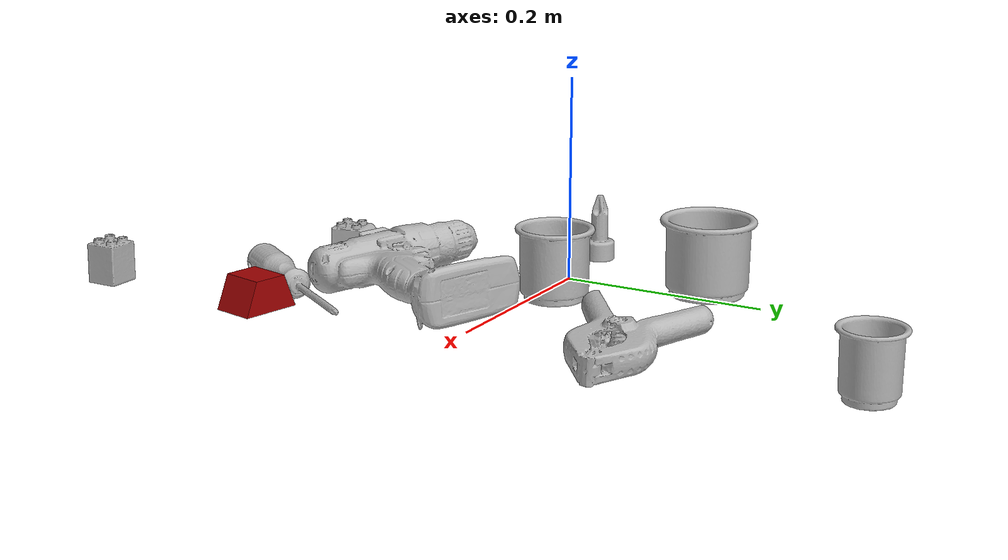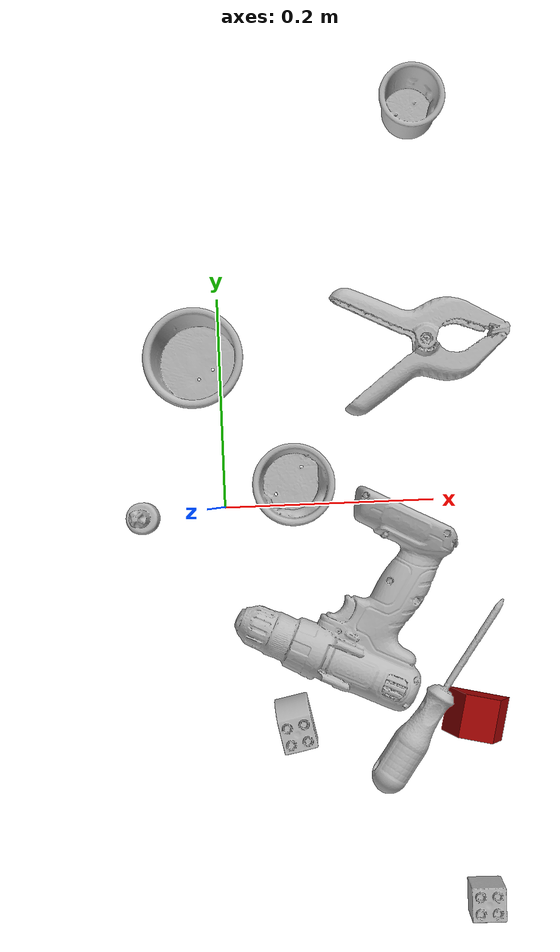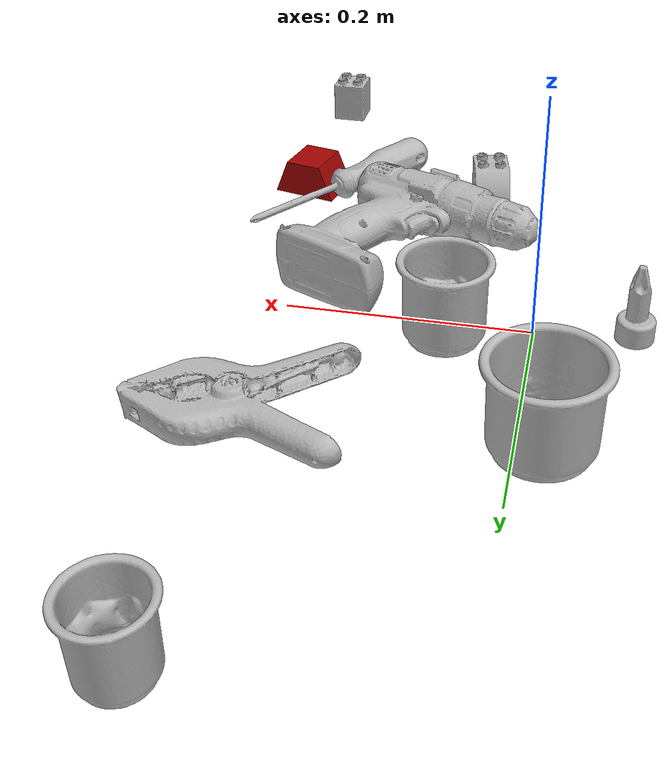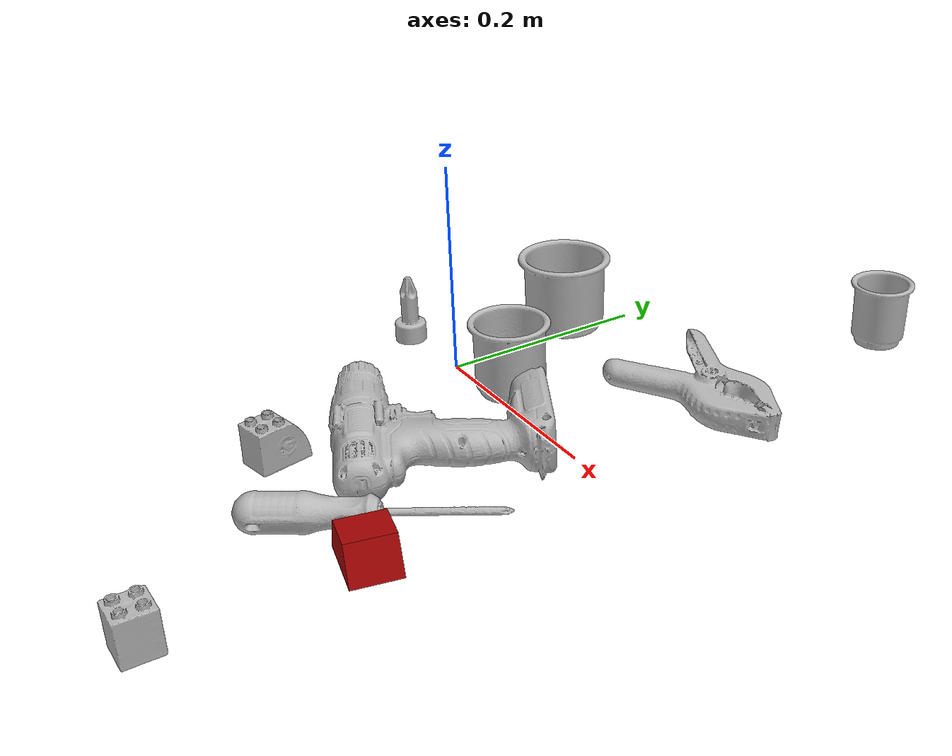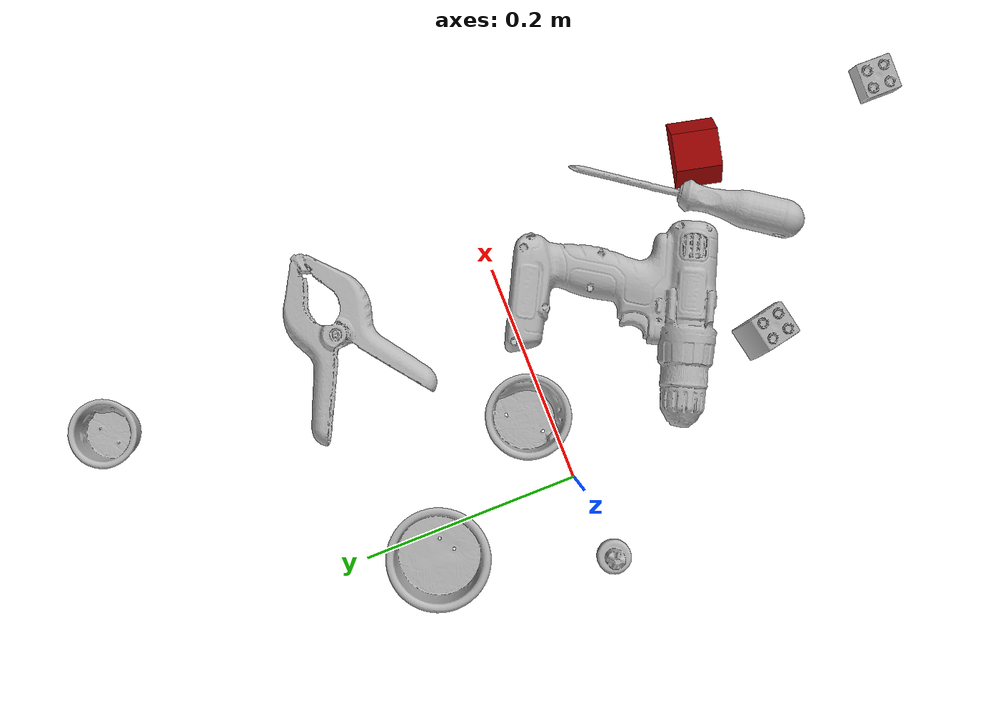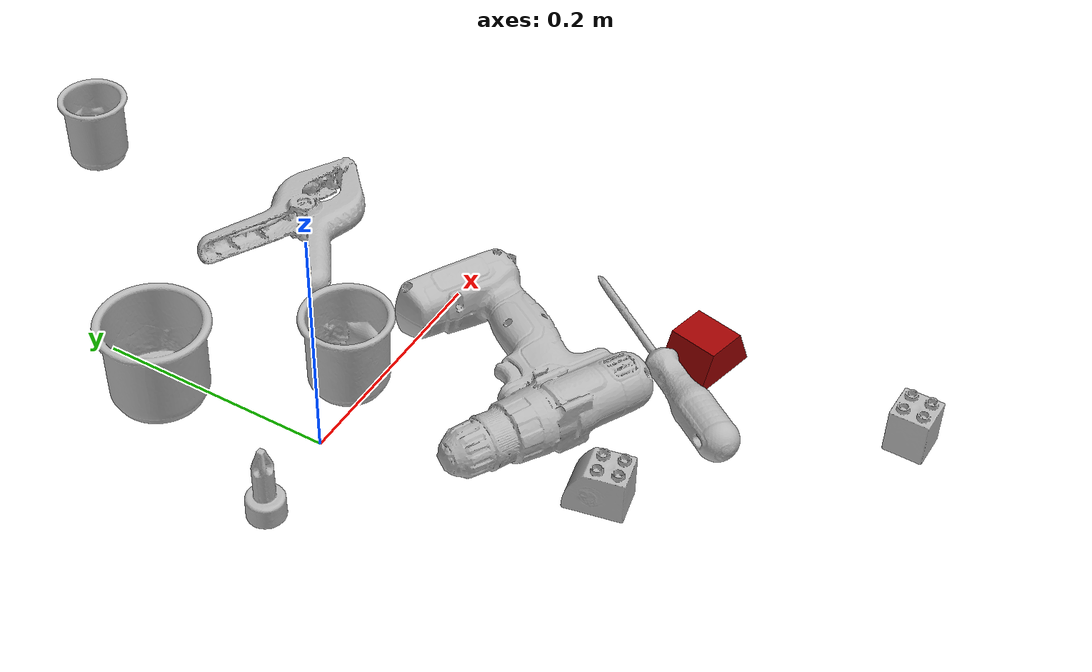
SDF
<sdf version="1.4">
  <world name="default">
    <light name="light1" type="point">
      <pose>0 0 1 0 0 0</pose>
      <diffuse>3 3 3 1</diffuse>
      <specular>3 3 3 1</specular>
    </light>
    <light name="light2" type="point">
      <pose>0 0.5 2 0 0 0</pose>
      <diffuse>1 1 1 1</diffuse>
      <specular>1 1 1 1</specular>
    </light>
    <light name="light3" type="point">
      <pose>0 0.5 2 0 0 0</pose>
      <diffuse>3 3 3 1</diffuse>
      <specular>3 3 3 1</specular>
    </light>
    <scene>
      <ambient>0.7 0.7 0.7</ambient>
    </scene>
    <model name="cup1">
      <link name="link_cup1">
        <collision name="default">
          <geometry>
            <mesh>
              <uri>model://b_cups/collision_meshes/collision.obj</uri>
              <scale>1.0 1.0 1.0</scale>
            </mesh>
          </geometry>
          <surface>
            <friction>
              <ode>
                <mu>0.5</mu>
                <mu2>0.5</mu2>
              </ode>
            </friction>
          <contact>
        <ode>
            <max_vel>0</max_vel>
            <min_depth>0.0001</min_depth>
            <kp>1e8</kp>
        </ode>
    </contact></surface>
        </collision>
        <visual name="default">
          <geometry>
            <mesh>
              <uri>model://b_cups/visual_meshes/visual.dae</uri>
              <scale>1.0 1.0 1.0</scale>
            </mesh>
          </geometry>
        </visual>
        <inertial>
          <mass>0.048613063991069794</mass>
          <pose>0.0005182003951631486 0.0018058597343042493 -0.0013381808530539274 0.11356326710502956 0.03872484102688303 -0.34569225342860055</pose>
          <inertia>
            <ixx>3.1820662e-05</ixx>
            <iyy>3.121653e-05</iyy>
            <izz>2.6776484e-05</izz>
            <ixy>0</ixy>
            <ixz>0</ixz>
            <iyz>0</iyz>
          </inertia>
        </inertial>
      </link>
      <pose>0.1899147778749466 0.3700915277004242 0.031996190547943115 -0.007654056760980145 -0.0037883973524676868 -1.8015946966077998</pose>
    </model>
    <model name="cup2">
      <link name="link_cup2">
        <collision name="default">
          <geometry>
            <mesh>
              <uri>model://e_cups/collision_meshes/collision.obj</uri>
              <scale>1.0 1.0 1.0</scale>
            </mesh>
          </geometry>
          <surface>
            <friction>
              <ode>
                <mu>0.5</mu>
                <mu2>0.5</mu2>
              </ode>
            </friction>
          <contact>
        <ode>
            <max_vel>0</max_vel>
            <min_depth>0.0001</min_depth>
            <kp>1e8</kp>
        </ode>
    </contact></surface>
        </collision>
        <visual name="default">
          <geometry>
            <mesh>
              <uri>model://e_cups/visual_meshes/visual.dae</uri>
              <scale>1.0 1.0 1.0</scale>
            </mesh>
          </geometry>
        </visual>
        <inertial>
          <mass>0.07592208683490753</mass>
          <pose>0.0011355738388374448 0.002879784908145666 -0.003882972290739417 0.695241209711482 0.0876783799590152 -0.5235234031188288</pose>
          <inertia>
            <ixx>6.6944274e-05</ixx>
            <iyy>6.996636e-05</iyy>
            <izz>6.400647e-05</izz>
            <ixy>0</ixy>
            <ixz>0</ixz>
            <iyz>0</iyz>
          </inertia>
        </inertial>
      </link>
      <pose>0.06770861893892288 0.018918760120868683 0.03559989482164383 6.703806233682679e-05 -8.46713983806165e-05 -1.9993671481156967</pose>
    </model>
    <model name="cup3">
      <link name="link_cup3">
        <collision name="default">
          <geometry>
            <mesh>
              <uri>model://h_cups/collision_meshes/collision.obj</uri>
              <scale>1.0 1.0 1.0</scale>
            </mesh>
          </geometry>
          <surface>
            <friction>
              <ode>
                <mu>0.5</mu>
                <mu2>0.5</mu2>
              </ode>
            </friction>
          <contact>
        <ode>
            <max_vel>0</max_vel>
            <min_depth>0.0001</min_depth>
            <kp>1e8</kp>
        </ode>
    </contact></surface>
        </collision>
        <visual name="default">
          <geometry>
            <mesh>
              <uri>model://h_cups/visual_meshes/visual.dae</uri>
              <scale>1.0 1.0 1.0</scale>
            </mesh>
          </geometry>
        </visual>
        <inertial>
          <mass>0.07054857164621353</mass>
          <pose>-2.7030857381760143e-05 0.0002301865170011297 -0.0018405391601845622 -0.024362378998248252 0.0654525662963329 0.12884761756284485</pose>
          <inertia>
            <ixx>9.1110225e-05</ixx>
            <iyy>9.002296e-05</iyy>
            <izz>9.5549614e-05</izz>
            <ixy>0</ixy>
            <ixz>0</ixz>
            <iyz>0</iyz>
          </inertia>
        </inertial>
      </link>
      <pose>-0.01900000497698784 0.13723884522914886 0.03775802627205849 2.7494079472816486e-06 9.694272784189281e-07 2.0544223003004607</pose>
    </model>
    <model name="toy1">
      <link name="link_toy1">
        <collision name="default">
          <geometry>
            <mesh>
              <uri>model://f_lego_duplo/collision_meshes/collision.obj</uri>
              <scale>1.0 1.0 1.0</scale>
            </mesh>
          </geometry>
          <surface>
            <friction>
              <ode>
                <mu>0.5</mu>
                <mu2>0.5</mu2>
              </ode>
            </friction>
          <contact>
        <ode>
            <max_vel>0</max_vel>
            <min_depth>0.0001</min_depth>
            <kp>1e8</kp>
        </ode>
    </contact></surface>
        </collision>
        <visual name="default">
          <geometry>
            <mesh>
              <uri>model://f_lego_duplo/visual_meshes/visual.dae</uri>
              <scale>1.0 1.0 1.0</scale>
            </mesh>
          </geometry>
        </visual>
        <inertial>
          <mass>0.027637142688035965</mass>
          <pose>2.3694037736277096e-05 0.0001339315203949809 0.0018837873358279467 0.029838580482088747 -0.014425059949813135 -0.6756637855802661</pose>
          <inertia>
            <ixx>5.8398805e-06</ixx>
            <iyy>5.8919077e-06</iyy>
            <izz>5.069264e-06</izz>
            <ixy>0</ixy>
            <ixz>0</ixz>
            <iyz>0</iyz>
          </inertia>
        </inertial>
      </link>
      <pose>0.2332611232995987 -0.3803834021091461 0.021870996803045273 1.4256470137710513e-06 1.346127557325209e-06 1.5568960016208795</pose>
    </model>
    <model name="toy2">
      <link name="link_toy2">
        <collision name="default">
          <geometry>
            <mesh>
              <uri>model://d_toy_airplane/collision_meshes/collision.obj</uri>
              <scale>1.0 1.0 1.0</scale>
            </mesh>
          </geometry>
          <surface>
            <friction>
              <ode>
                <mu>0.5</mu>
                <mu2>0.5</mu2>
              </ode>
            </friction>
          <contact>
        <ode>
            <max_vel>0</max_vel>
            <min_depth>0.0001</min_depth>
            <kp>1e8</kp>
        </ode>
    </contact></surface>
        </collision>
        <visual name="default">
          <geometry>
            <mesh>
              <uri>model://d_toy_airplane/visual_meshes/visual.dae</uri>
              <scale>1.0 1.0 1.0</scale>
            </mesh>
          </geometry>
        </visual>
        <inertial>
          <mass>0.017859498038887978</mass>
          <pose>9.410335042048246e-05 -5.809318827232346e-05 -0.011728094890713692 0.0002667298520076861 0.004679004392369758 0.5194091511239993</pose>
          <inertia>
            <ixx>5.35393e-06</ixx>
            <iyy>5.3579683e-06</iyy>
            <izz>1.6163864e-06</izz>
            <ixy>0</ixy>
            <ixz>0</ixz>
            <iyz>0</iyz>
          </inertia>
        </inertial>
      </link>
      <pose>-0.07865479588508606 -0.007083070930093527 0.033342912793159485 0.0003168920063653708 -0.0005360616173210904 1.6663993617211</pose>
    </model>
    <model name="toy3">
      <link name="link_toy3">
        <collision name="default">
          <geometry>
            <mesh>
              <uri>model://prism/collision_meshes/collision.obj</uri>
              <scale>0.5 0.5 0.5</scale>
            </mesh>
          </geometry>
          <surface>
            <friction>
              <ode>
                <mu>0.5</mu>
                <mu2>0.5</mu2>
              </ode>
            </friction>
          <contact>
        <ode>
            <max_vel>0</max_vel>
            <min_depth>0.0001</min_depth>
            <kp>1e8</kp>
        </ode>
    </contact></surface>
        </collision>
        <visual name="default">
          <geometry>
            <mesh>
              <uri>model://prism/visual_meshes/visual.dae</uri>
              <scale>0.5 0.5 0.5</scale>
            </mesh>
          </geometry>
        </visual>
        <inertial>
          <mass>0.04761093109846115</mass>
          <pose>-4.92679828312248e-05 -2.480786349678965e-07 -0.001693455153144896 0.0 0.006559181231804993 0.0</pose>
          <inertia>
            <ixx>1.074207e-05</ixx>
            <iyy>1.2981929e-05</iyy>
            <izz>1.590131e-05</izz>
            <ixy>0</ixy>
            <ixz>0</ixz>
            <iyz>0</iyz>
          </inertia>
        </inertial>
      </link>
      <pose>0.23184871673583984 -0.20767055451869965 0.016084881499409676 -2.2403492212247694e-05 -4.559136260373106e-05 2.914699307818674</pose>
    </model>
    <model name="toy4">
      <link name="link_toy4">
        <collision name="default">
          <geometry>
            <mesh>
              <uri>model://d_lego_duplo/collision_meshes/collision.obj</uri>
              <scale>1.0 1.0 1.0</scale>
            </mesh>
          </geometry>
          <surface>
            <friction>
              <ode>
                <mu>0.5</mu>
                <mu2>0.5</mu2>
              </ode>
            </friction>
          <contact>
        <ode>
            <max_vel>0</max_vel>
            <min_depth>0.0001</min_depth>
            <kp>1e8</kp>
        </ode>
    </contact></surface>
        </collision>
        <visual name="default">
          <geometry>
            <mesh>
              <uri>model://d_lego_duplo/visual_meshes/visual.dae</uri>
              <scale>1.0 1.0 1.0</scale>
            </mesh>
          </geometry>
        </visual>
        <inertial>
          <mass>0.06000049039721489</mass>
          <pose>0.0028305640444159508 0.0001636611996218562 0.000858980929479003 0.08010949527318252 -0.38355210287845315 0.0010297055105996263</pose>
          <inertia>
            <ixx>1.1615211e-05</ixx>
            <iyy>1.6485134e-05</iyy>
            <izz>1.5897598e-05</izz>
            <ixy>0</ixy>
            <ixz>0</ixz>
            <iyz>0</iyz>
          </inertia>
        </inertial>
      </link>
      <pose>0.059452254325151443 -0.20657624304294586 0.021739425137639046 -2.0270989674049598e-05 -3.4407078738737153e-05 -1.3671033009197502</pose>
    </model>
    <model name="hardware1">
      <link name="link_hardware1">
        <collision name="default">
          <geometry>
            <mesh>
              <uri>model://phillips_screwdriver/collision_meshes/collision.obj</uri>
              <scale>1.0 1.0 1.0</scale>
            </mesh>
          </geometry>
          <surface>
            <friction>
              <ode>
                <mu>0.5</mu>
                <mu2>0.5</mu2>
              </ode>
            </friction>
          <contact>
        <ode>
            <max_vel>0</max_vel>
            <min_depth>0.0001</min_depth>
            <kp>1e8</kp>
        </ode>
    </contact></surface>
        </collision>
        <visual name="default">
          <geometry>
            <mesh>
              <uri>model://phillips_screwdriver/visual_meshes/visual.dae</uri>
              <scale>1.0 1.0 1.0</scale>
            </mesh>
          </geometry>
        </visual>
        <inertial>
          <mass>0.11704345047473907</mass>
          <pose>-0.04777182638645172 0.0010362302418798208 -0.0004555549821816385 -0.1571668982332543 0.0058509943133797405 -0.002156735283865719</pose>
          <inertia>
            <ixx>1.3751404e-05</ixx>
            <iyy>0.00017241857</iyy>
            <izz>0.0001725651</izz>
            <ixy>0</ixy>
            <ixz>0</ixz>
            <iyz>0</iyz>
          </inertia>
        </inertial>
      </link>
      <pose>0.19779768586158752 -0.18844996392726898 0.017994176596403122 0.05634750543562005 -0.01393361897242768 0.9605539207742787</pose>
    </model>
    <model name="hardware2">
      <link name="link_hardware2">
        <collision name="default">
          <geometry>
            <mesh>
              <uri>model://large_clamp/collision_meshes/collision.obj</uri>
              <scale>1.0 1.0 1.0</scale>
            </mesh>
          </geometry>
          <surface>
            <friction>
              <ode>
                <mu>0.5</mu>
                <mu2>0.5</mu2>
              </ode>
            </friction>
          <contact>
        <ode>
            <max_vel>0</max_vel>
            <min_depth>0.0001</min_depth>
            <kp>1e8</kp>
        </ode>
    </contact></surface>
        </collision>
        <visual name="default">
          <geometry>
            <mesh>
              <uri>model://large_clamp/visual_meshes/visual.dae</uri>
              <scale>1.0 1.0 1.0</scale>
            </mesh>
          </geometry>
        </visual>
        <inertial>
          <mass>0.18953841924667358</mass>
          <pose>0.00636935792863369 0.0003585682134144008 -0.00018398056272417307 -0.002133075536327147 0.009671586607470332 0.026633167384546762</pose>
          <inertia>
            <ixx>0.00016722476</ixx>
            <iyy>0.0003175689</iyy>
            <izz>0.00045940367</izz>
            <ixy>0</ixy>
            <ixz>0</ixz>
            <iyz>0</iyz>
          </inertia>
        </inertial>
      </link>
      <pose>0.19504159688949585 0.14939871430397034 0.018504146486520767 -0.011577574780944323 0.04692769440837387 0.08013854677884061</pose>
    </model>
    <model name="hardware3">
      <link name="link_hardware3">
        <collision name="default">
          <geometry>
            <mesh>
              <uri>model://power_drill/collision_meshes/collision.obj</uri>
              <scale>1.0 1.0 1.0</scale>
            </mesh>
          </geometry>
          <surface>
            <friction>
              <ode>
                <mu>0.5</mu>
                <mu2>0.5</mu2>
              </ode>
            </friction>
          <contact>
        <ode>
            <max_vel>0</max_vel>
            <min_depth>0.0001</min_depth>
            <kp>1e8</kp>
        </ode>
    </contact></surface>
        </collision>
        <visual name="default">
          <geometry>
            <mesh>
              <uri>model://power_drill/visual_meshes/visual.dae</uri>
              <scale>1.0 1.0 1.0</scale>
            </mesh>
          </geometry>
        </visual>
        <inertial>
          <mass>0.5207164287567139</mass>
          <pose>-0.014780543744564056 0.014369428157806396 0.0012414171360433102 0.004609162650930739 0.004073022346756156 -0.183626968168983</pose>
          <inertia>
            <ixx>0.0021219437</ixx>
            <iyy>0.00083487434</iyy>
            <izz>0.002802402</izz>
            <ixy>0</ixy>
            <ixz>0</ixz>
            <iyz>0</iyz>
          </inertia>
        </inertial>
      </link>
      <pose>0.12071546912193298 -0.08299517631530762 0.027312446385622025 -0.03030599898491293 -0.04725284535882099 2.688876535306549</pose>
    </model>
  <physics type="ode">
      <max_contacts>50</max_contacts>
      <ode>
        <solver>
          <type>quick</type>
          <iters>75</iters>
        </solver>
        <constraints>
          <contact_max_correcting_vel>0</contact_max_correcting_vel>
          <contact_surface_layer>0</contact_surface_layer>
        </constraints>
      </ode>
    </physics></world>
</sdf>
